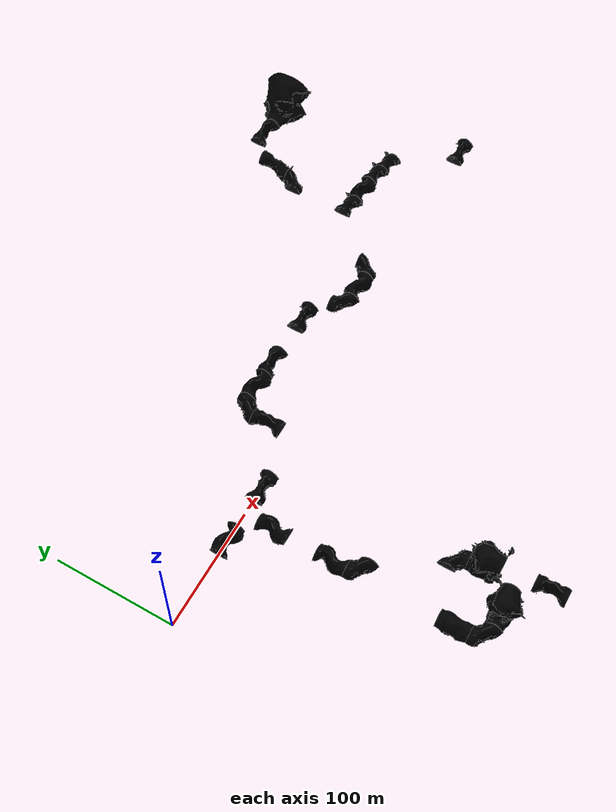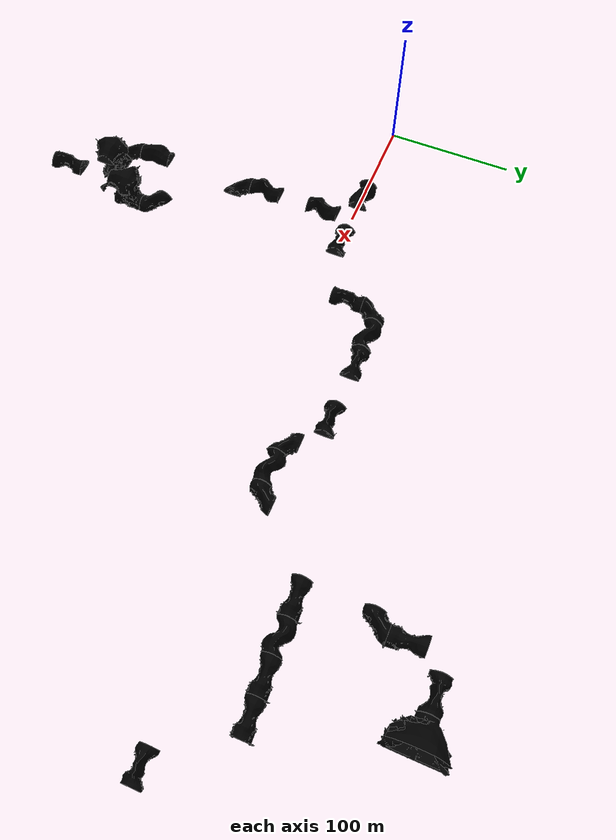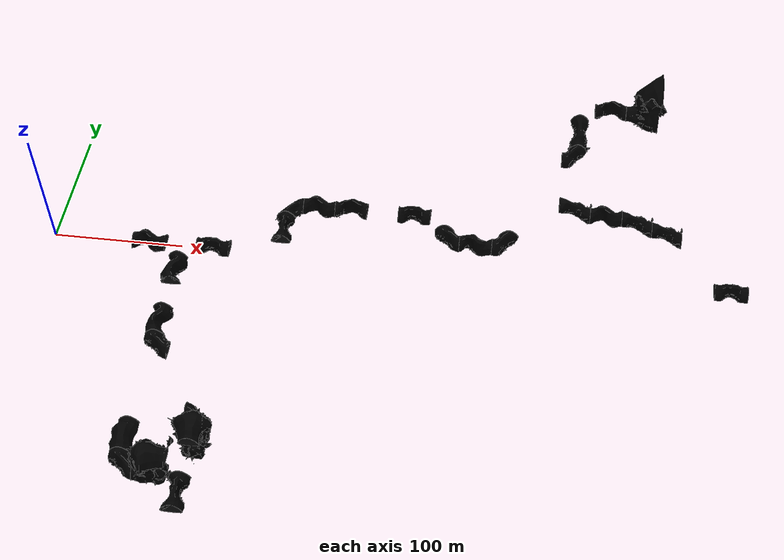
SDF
<sdf version="1.6">
 <world name="simple_cave_01">
  <plugin filename="libignition-gazebo-physics-system.so" name="ignition::gazebo::systems::Physics"/>
  <plugin filename="libignition-gazebo-user-commands-system.so" name="ignition::gazebo::systems::UserCommands"/>
  <plugin filename="libignition-gazebo-scene-broadcaster-system.so" name="ignition::gazebo::systems::SceneBroadcaster"/>
  <physics name="1ms" type="ode">
   <max_step_size>0.004</max_step_size>
   <real_time_factor>1.0</real_time_factor>
  </physics>
  <scene>
   <ambient>0.1 0.1 0.1 1.0</ambient>
   <background>0 0 0 1.0</background>
   <grid>false</grid>
   <origin_visual>false</origin_visual>
  </scene>
  <atmosphere type="adiabatic">
   <temperature>288</temperature>
   <temperature_gradient>0.2</temperature_gradient>
  </atmosphere>
  <include>
   <name>tile_2</name>
   <uri>https://fuel.ignitionrobotics.org/1.0/OpenRobotics/models/Cave Straight 02 Type B</uri>
   <pose>425.000000 175.000000 10.000000 0 0 1.570796</pose>
  </include>
  <include>
   <name>tile_3</name>
   <uri>https://fuel.ignitionrobotics.org/1.0/OpenRobotics/models/Cave Cavern Split 02 Type B</uri>
   <pose>450.000000 175.000000 10.000000 0 0 0.000000</pose>
  </include>
  <include>
   <name>tile_5</name>
   <uri>https://fuel.ignitionrobotics.org/1.0/OpenRobotics/models/Cave Elevation Type B</uri>
   <pose>400.000000 150.000000 0.000000 0 0 3.141593</pose>
  </include>
  <include>
   <name>tile_7</name>
   <uri>https://fuel.ignitionrobotics.org/1.0/OpenRobotics/models/Cave Corner 02 Type B</uri>
   <pose>400.000000 125.000000 0.000000 0 0 0.000000</pose>
  </include>
  <include>
   <name>tile_11</name>
   <uri>https://fuel.ignitionrobotics.org/1.0/OpenRobotics/models/Cave Elevation Type B</uri>
   <pose>400.000000 75.000000 -10.000000 0 0 -1.570796</pose>
  </include>
  <include>
   <name>tile_12</name>
   <uri>https://fuel.ignitionrobotics.org/1.0/OpenRobotics/models/Cave Straight 03 Type B</uri>
   <pose>425.000000 75.000000 -10.000000 0 0 1.570796</pose>
  </include>
  <include>
   <name>tile_13</name>
   <uri>https://fuel.ignitionrobotics.org/1.0/OpenRobotics/models/Cave Elevation Type B</uri>
   <pose>450.000000 75.000000 -20.000000 0 0 -1.570796</pose>
  </include>
  <include>
   <name>tile_14</name>
   <uri>https://fuel.ignitionrobotics.org/1.0/OpenRobotics/models/Cave Elevation Type B</uri>
   <pose>475.000000 75.000000 -30.000000 0 0 -1.570796</pose>
  </include>
  <include>
   <name>tile_16</name>
   <uri>https://fuel.ignitionrobotics.org/1.0/OpenRobotics/models/Cave Corner 02 Type B</uri>
   <pose>175.000000 50.000000 0.000000 0 0 3.141593</pose>
  </include>
  <include>
   <name>tile_17</name>
   <uri>https://fuel.ignitionrobotics.org/1.0/OpenRobotics/models/Cave Straight 03 Type B</uri>
   <pose>200.000000 50.000000 0.000000 0 0 1.570796</pose>
  </include>
  <include>
   <name>tile_18</name>
   <uri>https://fuel.ignitionrobotics.org/1.0/OpenRobotics/models/Cave Straight 02 Type B</uri>
   <pose>225.000000 50.000000 0.000000 0 0 1.570796</pose>
  </include>
  <include>
   <name>tile_20</name>
   <uri>https://fuel.ignitionrobotics.org/1.0/OpenRobotics/models/Cave Straight 02 Type B</uri>
   <pose>275.000000 50.000000 0.000000 0 0 -1.570796</pose>
  </include>
  <include>
   <name>tile_24</name>
   <uri>https://fuel.ignitionrobotics.org/1.0/OpenRobotics/models/Cave Straight 02 Type B</uri>
   <pose>175.000000 25.000000 0.000000 0 0 0.000000</pose>
  </include>
  <include>
   <name>tile_25</name>
   <uri>https://fuel.ignitionrobotics.org/1.0/OpenRobotics/models/Cave Corner 02 Type B</uri>
   <pose>300.000000 25.000000 0.000000 0 0 -1.570796</pose>
  </include>
  <include>
   <name>tile_26</name>
   <uri>https://fuel.ignitionrobotics.org/1.0/OpenRobotics/models/Cave Straight 03 Type B</uri>
   <pose>325.000000 25.000000 0.000000 0 0 -1.570796</pose>
  </include>
  <include>
   <name>tile_27</name>
   <uri>https://fuel.ignitionrobotics.org/1.0/OpenRobotics/models/Cave Corner 02 Type B</uri>
   <pose>350.000000 25.000000 0.000000 0 0 0.000000</pose>
  </include>
  <include>
   <name>tile_29</name>
   <uri>https://fuel.ignitionrobotics.org/1.0/OpenRobotics/models/Cave Straight 02 Type B</uri>
   <pose>525.000000 25.000000 -30.000000 0 0 -1.570796</pose>
  </include>
  <include>
   <name>tile_32</name>
   <uri>https://fuel.ignitionrobotics.org/1.0/OpenRobotics/models/Cave Straight 03 Type B</uri>
   <pose>75.000000 0.000000 0.000000 0 0 1.570796</pose>
  </include>
  <include>
   <name>tile_34</name>
   <uri>https://fuel.ignitionrobotics.org/1.0/OpenRobotics/models/Cave Straight 02 Type B</uri>
   <pose>125.000000 0.000000 0.000000 0 0 -1.570796</pose>
  </include>
  <include>
   <name>tile_37</name>
   <uri>https://fuel.ignitionrobotics.org/1.0/OpenRobotics/models/Cave Straight 03 Type B</uri>
   <pose>100.000000 -25.000000 0.000000 0 0 0.000000</pose>
  </include>
  <include>
   <name>tile_39</name>
   <uri>https://fuel.ignitionrobotics.org/1.0/OpenRobotics/models/Cave Straight 03 Type B</uri>
   <pose>100.000000 -75.000000 0.000000 0 0 3.141593</pose>
  </include>
  <include>
   <name>tile_40</name>
   <uri>https://fuel.ignitionrobotics.org/1.0/OpenRobotics/models/Cave Corner 02 Type B</uri>
   <pose>100.000000 -100.000000 0.000000 0 0 -1.570796</pose>
  </include>
  <include>
   <name>tile_45</name>
   <uri>https://fuel.ignitionrobotics.org/1.0/OpenRobotics/models/Cave Corner 02 Type B</uri>
   <pose>150.000000 -150.000000 0.000000 0 0 1.570796</pose>
  </include>
  <include>
   <name>tile_46</name>
   <uri>https://fuel.ignitionrobotics.org/1.0/OpenRobotics/models/Cave Straight 04 Type B</uri>
   <pose>100.000000 -175.000000 0.000000 0 0 0.000000</pose>
  </include>
  <include>
   <name>tile_47</name>
   <uri>https://fuel.ignitionrobotics.org/1.0/OpenRobotics/models/Cave Vertical Shaft Type B</uri>
   <pose>150.000000 -175.000000 0.000000 0 0 3.141593</pose>
  </include>
  <include>
   <name>tile_48</name>
   <uri>https://fuel.ignitionrobotics.org/1.0/OpenRobotics/models/Cave Corner 02 Type B</uri>
   <pose>100.000000 -200.000000 0.000000 0 0 -1.570796</pose>
  </include>
  <include>
   <name>tile_49</name>
   <uri>https://fuel.ignitionrobotics.org/1.0/OpenRobotics/models/Cave Vertical Shaft Type B</uri>
   <pose>125.000000 -200.000000 0.000000 0 0 -1.570796</pose>
  </include>
  <include>
   <name>tile_51</name>
   <uri>https://fuel.ignitionrobotics.org/1.0/OpenRobotics/models/Cave Straight 02 Type B</uri>
   <pose>150.000000 -225.000000 20.000000 0 0 0.000000</pose>
  </include>
  <wind><linear_velocity>0.000000 0.000000 0.000000</linear_velocity></wind>
  <plugin name="ignition::gazebo::systems::WindEffects" filename="libignition-gazebo-wind-effects-system.so">
   <horizontal>
    <magnitude>
     <time_for_rise>10</time_for_rise>
     <sin><amplitude_percent>0.05</amplitude_percent><period>60</period></sin>
     <noise type="gaussian"><mean>0</mean><stddev>0.0002</stddev></noise>
    </magnitude>
    <direction>
     <time_for_rise>30</time_for_rise>
     <sin><amplitude>5</amplitude><period>20</period></sin>
     <noise type="gaussian"><mean>0</mean><stddev>0.03</stddev></noise>
    </direction>
   </horizontal>
   <vertical><noise type="gaussian"><mean>0</mean><stddev>0.03</stddev></noise></vertical>
  </plugin>
  <plugin name="ignition::gazebo" filename="dummy">
   <level name="level0">
    <ref>tile_1</ref>
    <ref>tile_2</ref>
    <ref>tile_3</ref>
    <ref>tile_4</ref>
    <ref>cave_cap_2</ref>
    <pose>287.500000 175.000000 0.000000 0 0 0</pose>
    <geometry><box><size>575.000000 46.875000 130.000000</size></box></geometry>
    <buffer>5.000000</buffer>
   </level>
   <level name="level4">
    <ref>rescue_randy_1</ref>
    <pose>287.500000 183.140000 0.000000 0 0 0</pose>
    <geometry><box><size>575.000000 46.875000 130.000000</size></box></geometry>
    <buffer>5.000000</buffer>
   </level>
   <level name="level7">
    <ref>cave_cap_1</ref>
    <pose>287.500000 212.500000 0.000000 0 0 0</pose>
    <geometry><box><size>575.000000 46.875000 130.000000</size></box></geometry>
    <buffer>5.000000</buffer>
   </level>
   <level name="level9">
    <ref>tile_5</ref>
    <pose>287.500000 150.000000 0.000000 0 0 0</pose>
    <geometry><box><size>575.000000 46.875000 130.000000</size></box></geometry>
    <buffer>5.000000</buffer>
   </level>
   <level name="level10">
    <ref>tile_6</ref>
    <ref>tile_7</ref>
    <pose>287.500000 125.000000 0.000000 0 0 0</pose>
    <geometry><box><size>575.000000 46.875000 130.000000</size></box></geometry>
    <buffer>5.000000</buffer>
   </level>
   <level name="level12">
    <ref>tile_8</ref>
    <pose>287.500000 100.000000 0.000000 0 0 0</pose>
    <geometry><box><size>575.000000 46.875000 130.000000</size></box></geometry>
    <buffer>5.000000</buffer>
   </level>
   <level name="level13">
    <ref>tile_9</ref>
    <ref>tile_10</ref>
    <ref>tile_11</ref>
    <ref>tile_12</ref>
    <ref>tile_13</ref>
    <ref>tile_14</ref>
    <ref>tile_15</ref>
    <pose>287.500000 75.000000 0.000000 0 0 0</pose>
    <geometry><box><size>575.000000 46.875000 130.000000</size></box></geometry>
    <buffer>5.000000</buffer>
   </level>
   <level name="level15">
    <ref>rescue_randy_2</ref>
    <pose>287.500000 78.140000 0.000000 0 0 0</pose>
    <geometry><box><size>575.000000 46.875000 130.000000</size></box></geometry>
    <buffer>5.000000</buffer>
   </level>
   <level name="level17">
    <ref>phone_1</ref>
    <pose>287.500000 76.720000 0.000000 0 0 0</pose>
    <geometry><box><size>575.000000 46.875000 130.000000</size></box></geometry>
    <buffer>5.000000</buffer>
   </level>
   <level name="level18">
    <ref>tile_16</ref>
    <ref>tile_17</ref>
    <ref>tile_18</ref>
    <ref>tile_19</ref>
    <ref>tile_20</ref>
    <ref>tile_21</ref>
    <ref>tile_22</ref>
    <ref>tile_23</ref>
    <pose>287.500000 50.000000 0.000000 0 0 0</pose>
    <geometry><box><size>575.000000 46.875000 130.000000</size></box></geometry>
    <buffer>5.000000</buffer>
   </level>
   <level name="level22">
    <ref>backpack_1</ref>
    <pose>287.500000 48.750000 0.000000 0 0 0</pose>
    <geometry><box><size>575.000000 46.875000 130.000000</size></box></geometry>
    <buffer>5.000000</buffer>
   </level>
   <level name="level27">
    <ref>phone_2</ref>
    <pose>287.500000 50.640000 0.000000 0 0 0</pose>
    <geometry><box><size>575.000000 46.875000 130.000000</size></box></geometry>
    <buffer>5.000000</buffer>
   </level>
   <level name="level28">
    <ref>tile_24</ref>
    <ref>tile_25</ref>
    <ref>tile_26</ref>
    <ref>tile_27</ref>
    <ref>tile_28</ref>
    <ref>tile_29</ref>
    <ref>cave_cap_3</ref>
    <pose>287.500000 25.000000 0.000000 0 0 0</pose>
    <geometry><box><size>575.000000 46.875000 130.000000</size></box></geometry>
    <buffer>5.000000</buffer>
   </level>
   <level name="level29">
    <ref>backpack_2</ref>
    <pose>287.500000 32.580000 0.000000 0 0 0</pose>
    <geometry><box><size>575.000000 46.875000 130.000000</size></box></geometry>
    <buffer>5.000000</buffer>
   </level>
   <level name="level32">
    <ref>rescue_randy_3</ref>
    <pose>287.500000 25.050000 0.000000 0 0 0</pose>
    <geometry><box><size>575.000000 46.875000 130.000000</size></box></geometry>
    <buffer>5.000000</buffer>
   </level>
   <level name="level35">
    <ref>tile_30</ref>
    <ref>tile_31</ref>
    <ref>tile_32</ref>
    <ref>tile_33</ref>
    <ref>tile_34</ref>
    <ref>tile_35</ref>
    <ref>tile_36</ref>
    <pose>287.500000 0.000000 0.000000 0 0 0</pose>
    <geometry><box><size>575.000000 46.875000 130.000000</size></box></geometry>
    <buffer>5.000000</buffer>
   </level>
   <level name="level39">
    <ref>backpack_3</ref>
    <pose>287.500000 -5.000000 0.000000 0 0 0</pose>
    <geometry><box><size>575.000000 46.875000 130.000000</size></box></geometry>
    <buffer>5.000000</buffer>
   </level>
   <level name="level44">
    <ref>phone_3</ref>
    <pose>287.500000 -2.030000 0.000000 0 0 0</pose>
    <geometry><box><size>575.000000 46.875000 130.000000</size></box></geometry>
    <buffer>5.000000</buffer>
   </level>
   <level name="level46">
    <ref>tile_37</ref>
    <pose>287.500000 -25.000000 0.000000 0 0 0</pose>
    <geometry><box><size>575.000000 46.875000 130.000000</size></box></geometry>
    <buffer>5.000000</buffer>
   </level>
   <level name="level47">
    <ref>tile_38</ref>
    <pose>287.500000 -50.000000 0.000000 0 0 0</pose>
    <geometry><box><size>575.000000 46.875000 130.000000</size></box></geometry>
    <buffer>5.000000</buffer>
   </level>
   <level name="level48">
    <ref>tile_39</ref>
    <pose>287.500000 -75.000000 0.000000 0 0 0</pose>
    <geometry><box><size>575.000000 46.875000 130.000000</size></box></geometry>
    <buffer>5.000000</buffer>
   </level>
   <level name="level49">
    <ref>tile_40</ref>
    <ref>tile_41</ref>
    <pose>287.500000 -100.000000 0.000000 0 0 0</pose>
    <geometry><box><size>575.000000 46.875000 130.000000</size></box></geometry>
    <buffer>5.000000</buffer>
   </level>
   <level name="level50">
    <ref>tile_42</ref>
    <pose>287.500000 -125.000000 0.000000 0 0 0</pose>
    <geometry><box><size>575.000000 46.875000 130.000000</size></box></geometry>
    <buffer>5.000000</buffer>
   </level>
   <level name="level51">
    <ref>phone_4</ref>
    <pose>287.500000 -121.680000 0.000000 0 0 0</pose>
    <geometry><box><size>575.000000 46.875000 130.000000</size></box></geometry>
    <buffer>5.000000</buffer>
   </level>
   <level name="level52">
    <ref>tile_43</ref>
    <ref>tile_44</ref>
    <ref>tile_45</ref>
    <pose>287.500000 -150.000000 0.000000 0 0 0</pose>
    <geometry><box><size>575.000000 46.875000 130.000000</size></box></geometry>
    <buffer>5.000000</buffer>
   </level>
   <level name="level53">
    <ref>tile_46</ref>
    <ref>tile_47</ref>
    <pose>287.500000 -175.000000 0.000000 0 0 0</pose>
    <geometry><box><size>575.000000 46.875000 130.000000</size></box></geometry>
    <buffer>5.000000</buffer>
   </level>
   <level name="level54">
    <ref>tile_48</ref>
    <ref>tile_49</ref>
    <ref>backpack_4</ref>
    <ref>tile_50</ref>
    <pose>287.500000 -200.000000 0.000000 0 0 0</pose>
    <geometry><box><size>575.000000 46.875000 130.000000</size></box></geometry>
    <buffer>5.000000</buffer>
   </level>
   <level name="level56">
    <ref>tile_51</ref>
    <pose>287.500000 -225.000000 0.000000 0 0 0</pose>
    <geometry><box><size>575.000000 46.875000 130.000000</size></box></geometry>
    <buffer>5.000000</buffer>
   </level>
   <level name="level57">
    <ref>rescue_randy_4</ref>
    <pose>287.500000 -237.280000 0.000000 0 0 0</pose>
    <geometry><box><size>575.000000 46.875000 130.000000</size></box></geometry>
    <buffer>5.000000</buffer>
   </level>
   <level name="level58">
    <ref>cave_cap_4</ref>
    <pose>287.500000 -250.000000 0.000000 0 0 0</pose>
    <geometry><box><size>575.000000 46.875000 130.000000</size></box></geometry>
    <buffer>5.000000</buffer>
   </level>
   <level name="level1">
    <ref>tile_1</ref>
    <ref>tile_5</ref>
    <ref>tile_7</ref>
    <ref>tile_11</ref>
    <pose>400.000000 -18.750000 0.000000 0 0 0</pose>
    <geometry><box><size>46.875000 512.500000 130.000000</size></box></geometry>
    <buffer>5.000000</buffer>
   </level>
   <level name="level2">
    <ref>tile_2</ref>
    <ref>tile_12</ref>
    <ref>phone_1</ref>
    <pose>425.000000 -18.750000 0.000000 0 0 0</pose>
    <geometry><box><size>46.875000 512.500000 130.000000</size></box></geometry>
    <buffer>5.000000</buffer>
   </level>
   <level name="level3">
    <ref>tile_3</ref>
    <ref>tile_13</ref>
    <pose>450.000000 -18.750000 0.000000 0 0 0</pose>
    <geometry><box><size>46.875000 512.500000 130.000000</size></box></geometry>
    <buffer>5.000000</buffer>
   </level>
   <level name="level5">
    <ref>rescue_randy_1</ref>
    <pose>453.290000 -18.750000 0.000000 0 0 0</pose>
    <geometry><box><size>46.875000 512.500000 130.000000</size></box></geometry>
    <buffer>5.000000</buffer>
   </level>
   <level name="level6">
    <ref>tile_4</ref>
    <ref>cave_cap_1</ref>
    <ref>tile_14</ref>
    <pose>475.000000 -18.750000 0.000000 0 0 0</pose>
    <geometry><box><size>46.875000 512.500000 130.000000</size></box></geometry>
    <buffer>5.000000</buffer>
   </level>
   <level name="level8">
    <ref>cave_cap_2</ref>
    <ref>tile_15</ref>
    <ref>tile_23</ref>
    <ref>phone_2</ref>
    <ref>tile_28</ref>
    <pose>500.000000 -18.750000 0.000000 0 0 0</pose>
    <geometry><box><size>46.875000 512.500000 130.000000</size></box></geometry>
    <buffer>5.000000</buffer>
   </level>
   <level name="level11">
    <ref>tile_6</ref>
    <ref>tile_8</ref>
    <ref>tile_10</ref>
    <pose>375.000000 -18.750000 0.000000 0 0 0</pose>
    <geometry><box><size>46.875000 512.500000 130.000000</size></box></geometry>
    <buffer>5.000000</buffer>
   </level>
   <level name="level14">
    <ref>tile_9</ref>
    <ref>tile_22</ref>
    <ref>tile_27</ref>
    <pose>350.000000 -18.750000 0.000000 0 0 0</pose>
    <geometry><box><size>46.875000 512.500000 130.000000</size></box></geometry>
    <buffer>5.000000</buffer>
   </level>
   <level name="level16">
    <ref>rescue_randy_2</ref>
    <pose>348.000000 -18.750000 0.000000 0 0 0</pose>
    <geometry><box><size>46.875000 512.500000 130.000000</size></box></geometry>
    <buffer>5.000000</buffer>
   </level>
   <level name="level19">
    <ref>tile_16</ref>
    <ref>tile_24</ref>
    <ref>tile_36</ref>
    <pose>175.000000 -18.750000 0.000000 0 0 0</pose>
    <geometry><box><size>46.875000 512.500000 130.000000</size></box></geometry>
    <buffer>5.000000</buffer>
   </level>
   <level name="level20">
    <ref>tile_17</ref>
    <pose>200.000000 -18.750000 0.000000 0 0 0</pose>
    <geometry><box><size>46.875000 512.500000 130.000000</size></box></geometry>
    <buffer>5.000000</buffer>
   </level>
   <level name="level21">
    <ref>tile_18</ref>
    <pose>225.000000 -18.750000 0.000000 0 0 0</pose>
    <geometry><box><size>46.875000 512.500000 130.000000</size></box></geometry>
    <buffer>5.000000</buffer>
   </level>
   <level name="level23">
    <ref>backpack_1</ref>
    <pose>233.830000 -18.750000 0.000000 0 0 0</pose>
    <geometry><box><size>46.875000 512.500000 130.000000</size></box></geometry>
    <buffer>5.000000</buffer>
   </level>
   <level name="level24">
    <ref>tile_19</ref>
    <pose>250.000000 -18.750000 0.000000 0 0 0</pose>
    <geometry><box><size>46.875000 512.500000 130.000000</size></box></geometry>
    <buffer>5.000000</buffer>
   </level>
   <level name="level25">
    <ref>tile_20</ref>
    <pose>275.000000 -18.750000 0.000000 0 0 0</pose>
    <geometry><box><size>46.875000 512.500000 130.000000</size></box></geometry>
    <buffer>5.000000</buffer>
   </level>
   <level name="level26">
    <ref>tile_21</ref>
    <ref>tile_25</ref>
    <ref>backpack_2</ref>
    <pose>300.000000 -18.750000 0.000000 0 0 0</pose>
    <geometry><box><size>46.875000 512.500000 130.000000</size></box></geometry>
    <buffer>5.000000</buffer>
   </level>
   <level name="level30">
    <ref>tile_26</ref>
    <pose>325.000000 -18.750000 0.000000 0 0 0</pose>
    <geometry><box><size>46.875000 512.500000 130.000000</size></box></geometry>
    <buffer>5.000000</buffer>
   </level>
   <level name="level31">
    <ref>tile_29</ref>
    <pose>525.000000 -18.750000 0.000000 0 0 0</pose>
    <geometry><box><size>46.875000 512.500000 130.000000</size></box></geometry>
    <buffer>5.000000</buffer>
   </level>
   <level name="level33">
    <ref>rescue_randy_3</ref>
    <pose>536.600000 -18.750000 0.000000 0 0 0</pose>
    <geometry><box><size>46.875000 512.500000 130.000000</size></box></geometry>
    <buffer>5.000000</buffer>
   </level>
   <level name="level34">
    <ref>cave_cap_3</ref>
    <pose>550.000000 -18.750000 0.000000 0 0 0</pose>
    <geometry><box><size>46.875000 512.500000 130.000000</size></box></geometry>
    <buffer>5.000000</buffer>
   </level>
   <level name="level36">
    <ref>tile_30</ref>
    <pose>25.000000 -18.750000 0.000000 0 0 0</pose>
    <geometry><box><size>46.875000 512.500000 130.000000</size></box></geometry>
    <buffer>5.000000</buffer>
   </level>
   <level name="level37">
    <ref>tile_31</ref>
    <pose>50.000000 -18.750000 0.000000 0 0 0</pose>
    <geometry><box><size>46.875000 512.500000 130.000000</size></box></geometry>
    <buffer>5.000000</buffer>
   </level>
   <level name="level38">
    <ref>tile_32</ref>
    <pose>75.000000 -18.750000 0.000000 0 0 0</pose>
    <geometry><box><size>46.875000 512.500000 130.000000</size></box></geometry>
    <buffer>5.000000</buffer>
   </level>
   <level name="level40">
    <ref>backpack_3</ref>
    <pose>80.160000 -18.750000 0.000000 0 0 0</pose>
    <geometry><box><size>46.875000 512.500000 130.000000</size></box></geometry>
    <buffer>5.000000</buffer>
   </level>
   <level name="level41">
    <ref>tile_33</ref>
    <ref>tile_37</ref>
    <ref>tile_38</ref>
    <ref>tile_39</ref>
    <ref>tile_40</ref>
    <ref>tile_43</ref>
    <ref>tile_46</ref>
    <ref>tile_48</ref>
    <pose>100.000000 -18.750000 0.000000 0 0 0</pose>
    <geometry><box><size>46.875000 512.500000 130.000000</size></box></geometry>
    <buffer>5.000000</buffer>
   </level>
   <level name="level42">
    <ref>tile_34</ref>
    <ref>tile_41</ref>
    <ref>tile_42</ref>
    <ref>phone_4</ref>
    <ref>tile_44</ref>
    <ref>tile_49</ref>
    <pose>125.000000 -18.750000 0.000000 0 0 0</pose>
    <geometry><box><size>46.875000 512.500000 130.000000</size></box></geometry>
    <buffer>5.000000</buffer>
   </level>
   <level name="level43">
    <ref>tile_35</ref>
    <ref>tile_45</ref>
    <ref>tile_47</ref>
    <ref>tile_50</ref>
    <ref>tile_51</ref>
    <ref>rescue_randy_4</ref>
    <ref>cave_cap_4</ref>
    <pose>150.000000 -18.750000 0.000000 0 0 0</pose>
    <geometry><box><size>46.875000 512.500000 130.000000</size></box></geometry>
    <buffer>5.000000</buffer>
   </level>
   <level name="level45">
    <ref>phone_3</ref>
    <pose>149.960000 -18.750000 0.000000 0 0 0</pose>
    <geometry><box><size>46.875000 512.500000 130.000000</size></box></geometry>
    <buffer>5.000000</buffer>
   </level>
   <level name="level55">
    <ref>backpack_4</ref>
    <pose>130.110000 -18.750000 0.000000 0 0 0</pose>
    <geometry><box><size>46.875000 512.500000 130.000000</size></box></geometry>
    <buffer>5.000000</buffer>
   </level>
  </plugin>
 </world>
</sdf>

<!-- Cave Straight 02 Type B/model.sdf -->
<sdf version="1.6">
  <model name="Cave Straight 02 Type B">
    <static>true</static>
    <link name="base_link">
      <collision name="collision">
        <pose>0 0 0 0 0 0</pose>
        <geometry>
          <mesh>
            <uri>model://Cave Straight 02 Type B/meshes/cavestraight02.dae</uri>
            <scale>1.005 1.005 1.0</scale>
          </mesh>
        </geometry>
      </collision>
      <visual name="StriatedRock_visual">
        <geometry>
          <mesh>
            <uri>model://Cave Straight 02 Type B/meshes/cavestraight02.dae</uri>
            <scale>1.005 1.005 1.0</scale>
            <submesh>
              <name>StriatedRock</name>
              <center>false</center>
            </submesh>
          </mesh>
        </geometry>
        <material>
          <diffuse>0 0 0 1</diffuse>
          <specular>0 0 0 1</specular>
          <pbr>
            <metal>
              <albedo_map>model://Cave Straight 02 Type B/materials/textures/StriatedRock_Albedo.png</albedo_map>
              <normal_map>model://Cave Straight 02 Type B/materials/textures/StriatedRock_Normal.png</normal_map>
              <roughness_map>model://Cave Straight 02 Type B/materials/textures/StriatedRock_Roughness.png</roughness_map>
            </metal>
          </pbr>

          <script>
            <uri>model://Cave Straight 02 Type B/materials/scripts/</uri>
            <uri>model://Cave Straight 02 Type B/materials/textures/</uri>
            <name>CaveTile/StriatedRock_Diffuse</name>
          </script>
        </material>
      </visual>
      <visual name="RockPile_visual">
        <geometry>
          <mesh>
            <uri>model://Cave Straight 02 Type B/meshes/cavestraight02.dae</uri>
            <scale>1.005 1.005 1.0</scale>
            <submesh>
              <name>RockPile</name>
              <center>false</center>
            </submesh>
          </mesh>
        </geometry>
        <material>
          <diffuse>0 0 0 1</diffuse>
          <specular>0 0 0 1</specular>
          <pbr>
            <metal>
              <albedo_map>model://Cave Straight 02 Type B/materials/textures/RockPile_Albedo.png</albedo_map>
              <normal_map>model://Cave Straight 02 Type B/materials/textures/RockPile_Normal.png</normal_map>
              <roughness_map>model://Cave Straight 02 Type B/materials/textures/RockPile_Roughness.png</roughness_map>
            </metal>
          </pbr>

          <script>
            <uri>model://Cave Straight 02 Type B/materials/scripts/</uri>
            <uri>model://Cave Straight 02 Type B/materials/textures/</uri>
            <name>CaveTile/RockPile_Diffuse</name>
          </script>
        </material>
      </visual>
      <visual name="CaveWall_visual">
        <geometry>
          <mesh>
            <uri>model://Cave Straight 02 Type B/meshes/cavestraight02.dae</uri>
            <scale>1.005 1.005 1.0</scale>
            <submesh>
              <name>CaveWall</name>
              <center>false</center>
            </submesh>
          </mesh>
        </geometry>
        <material>
          <diffuse>0 0 0 1</diffuse>
          <specular>0 0 0 1</specular>
          <pbr>
            <metal>
              <albedo_map>model://Cave Straight 02 Type B/materials/textures/CaveWall_Albedo.png</albedo_map>
              <normal_map>model://Cave Straight 02 Type B/materials/textures/CaveWall_Normal.png</normal_map>
              <roughness_map>model://Cave Straight 02 Type B/materials/textures/CaveWall_Roughness.png</roughness_map>
            </metal>
          </pbr>

          <script>
            <uri>model://Cave Straight 02 Type B/materials/scripts/</uri>
            <uri>model://Cave Straight 02 Type B/materials/textures/</uri>
            <name>CaveTile/CaveWall_Diffuse</name>
          </script>
        </material>
      </visual>
    </link>
  </model>
</sdf>

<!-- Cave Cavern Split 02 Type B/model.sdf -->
<sdf version="1.6">
  <model name="Cave Cavern Split 02 Type B">
    <static>true</static>
    <link name="base_link">
      <collision name="collision">
        <pose>0 0 0 0 0 0</pose>
        <geometry>
          <mesh>
            <uri>model://cave_Cave Cavern Split 02 Type B/meshes/cavernsplit02.dae</uri>
            <scale>1.0 1.0 1.0</scale>
          </mesh>
        </geometry>
      </collision>
      <visual name="StriatedRock_visual">
        <geometry>
          <mesh>
            <uri>model://cave_Cave Cavern Split 02 Type B/meshes/cavernsplit02.dae</uri>
            <submesh>
              <name>StriatedRock</name>
              <center>false</center>
            </submesh>
          </mesh>
        </geometry>
        <material>
          <diffuse>0 0 0 1</diffuse>
          <specular>0 0 0 1</specular>
          <pbr>
            <metal>
              <albedo_map>model://cave_Cave Cavern Split 02 Type B/materials/textures/StriatedRock_Albedo.png</albedo_map>
              <normal_map>model://cave_Cave Cavern Split 02 Type B/materials/textures/StriatedRock_Normal.png</normal_map>
              <roughness_map>model://cave_Cave Cavern Split 02 Type B/materials/textures/StriatedRock_Roughness.png</roughness_map>
            </metal>
          </pbr>

          <script>
            <uri>model://cave_Cave Cavern Split 02 Type B/materials/scripts/</uri>
            <uri>model://cave_Cave Cavern Split 02 Type B/materials/textures/</uri>
            <name>CaveTile/StriatedRock_Diffuse</name>
          </script>
        </material>
      </visual>
      <visual name="RockPile_visual">
        <geometry>
          <mesh>
            <uri>model://cave_Cave Cavern Split 02 Type B/meshes/cavernsplit02.dae</uri>
            <submesh>
              <name>RockPile</name>
              <center>false</center>
            </submesh>
          </mesh>
        </geometry>
        <material>
          <diffuse>0 0 0 1</diffuse>
          <specular>0 0 0 1</specular>
          <pbr>
            <metal>
              <albedo_map>model://cave_Cave Cavern Split 02 Type B/materials/textures/RockPile_Albedo.png</albedo_map>
              <normal_map>model://cave_Cave Cavern Split 02 Type B/materials/textures/RockPile_Normal.png</normal_map>
              <roughness_map>model://cave_Cave Cavern Split 02 Type B/materials/textures/RockPile_Roughness.png</roughness_map>
            </metal>
          </pbr>

          <script>
            <uri>model://cave_Cave Cavern Split 02 Type B/materials/scripts/</uri>
            <uri>model://cave_Cave Cavern Split 02 Type B/materials/textures/</uri>
            <name>CaveTile/RockPile_Diffuse</name>
          </script>
        </material>
      </visual>
      <visual name="CaveWall_visual">
        <geometry>
          <mesh>
            <uri>model://cave_Cave Cavern Split 02 Type B/meshes/cavernsplit02.dae</uri>
            <submesh>
              <name>CaveWall_ncl1_1</name>
              <center>false</center>
            </submesh>
          </mesh>
        </geometry>
        <material>
          <diffuse>0 0 0 1</diffuse>
          <specular>0 0 0 1</specular>
          <pbr>
            <metal>
              <albedo_map>model://cave_Cave Cavern Split 02 Type B/materials/textures/CaveWall_Albedo.png</albedo_map>
              <normal_map>model://cave_Cave Cavern Split 02 Type B/materials/textures/CaveWall_Normal.png</normal_map>
              <roughness_map>model://cave_Cave Cavern Split 02 Type B/materials/textures/CaveWall_Roughness.png</roughness_map>
            </metal>
          </pbr>

          <script>
            <uri>model://cave_Cave Cavern Split 02 Type B/materials/scripts/</uri>
            <uri>model://cave_Cave Cavern Split 02 Type B/materials/textures/</uri>
            <name>CaveTile/CaveWall_Diffuse</name>
          </script>
        </material>
      </visual>
    </link>
  </model>
</sdf>

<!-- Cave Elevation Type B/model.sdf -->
<sdf version="1.6">
  <model name="Cave Elevation Type B">
    <static>true</static>
    <link name="base_link">
      <collision name="collision">
        <pose>0 0 0 0 0 0</pose>
        <geometry>
          <mesh>
            <uri>model://Cave Elevation Type B/meshes/caveelevation.dae</uri>
            <scale>1.0 1.0 1.0</scale>
          </mesh>
        </geometry>
      </collision>
      <visual name="CaveWall_visual">
        <geometry>
          <mesh>
            <uri>model://Cave Elevation Type B/meshes/caveelevation.dae</uri>
            <submesh>
              <name>CaveWall</name>
              <center>false</center>
            </submesh>
          </mesh>
        </geometry>
        <material>
          <diffuse>0 0 0 1</diffuse>
          <specular>0 0 0 1</specular>
          <pbr>
            <metal>
              <albedo_map>model://Cave Elevation Type B/materials/textures/CaveWall_Albedo.png</albedo_map>
              <normal_map>model://Cave Elevation Type B/materials/textures/CaveWall_Normal.png</normal_map>
              <roughness_map>model://Cave Elevation Type B/materials/textures/CaveWall_Roughness.png</roughness_map>
            </metal>
          </pbr>

          <script>
            <uri>model://Cave Elevation Type B/materials/scripts/</uri>
            <uri>model://Cave Elevation Type B/materials/textures/</uri>
            <name>CaveTile/CaveWall_Diffuse</name>
          </script>
        </material>
      </visual>
      <visual name="RockPile_visual">
        <geometry>
          <mesh>
            <uri>model://Cave Elevation Type B/meshes/caveelevation.dae</uri>
            <submesh>
              <name>RockPile</name>
              <center>false</center>
            </submesh>
          </mesh>
        </geometry>
        <material>
          <diffuse>0 0 0 1</diffuse>
          <specular>0 0 0 1</specular>
          <pbr>
            <metal>
              <albedo_map>model://Cave Elevation Type B/materials/textures/RockPile_Albedo.png</albedo_map>
              <normal_map>model://Cave Elevation Type B/materials/textures/RockPile_Normal.png</normal_map>
              <roughness_map>model://Cave Elevation Type B/materials/textures/RockPile_Roughness.png</roughness_map>
            </metal>
          </pbr>

          <script>
            <uri>model://Cave Elevation Type B/materials/scripts/</uri>
            <uri>model://Cave Elevation Type B/materials/textures/</uri>
            <name>CaveTile/RockPile_Diffuse</name>
          </script>
        </material>
      </visual>
      <visual name="StriatedRock_visual">
        <geometry>
          <mesh>
            <uri>model://Cave Elevation Type B/meshes/caveelevation.dae</uri>
            <submesh>
              <name>StriatedRock</name>
              <center>false</center>
            </submesh>
          </mesh>
        </geometry>
        <material>
          <diffuse>0 0 0 1</diffuse>
          <specular>0 0 0 1</specular>
          <pbr>
            <metal>
              <albedo_map>model://Cave Elevation Type B/materials/textures/StriatedRock_Albedo.png</albedo_map>
              <normal_map>model://Cave Elevation Type B/materials/textures/StriatedRock_Normal.png</normal_map>
              <roughness_map>model://Cave Elevation Type B/materials/textures/StriatedRock_Roughness.png</roughness_map>
            </metal>
          </pbr>

          <script>
            <uri>model://Cave Elevation Type B/materials/scripts/</uri>
            <uri>model://Cave Elevation Type B/materials/textures/</uri>
            <name>CaveTile/StriatedRock_Diffuse</name>
          </script>
        </material>
      </visual>
    </link>

    <plugin filename="libignition-gazebo-performer-detector-system.so" name="ignition::gazebo::systems::PerformerDetector">
      <topic>/subt_performer_detector</topic>
      <pose>0 0 10 0 0 0</pose>
      <geometry>
        <box>
          <size>20 30 20</size>
        </box>
      </geometry>
      <header_data>
        <key>type</key>
        <value>elevation</value>
      </header_data>
    </plugin>
  </model>
</sdf>

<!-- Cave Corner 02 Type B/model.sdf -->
<sdf version="1.6">
  <model name="Cave Corner 02 Type B">
    <static>true</static>
    <link name="base_link">
      <collision name="collision">
        <pose>0 0 0 0 0 0</pose>
        <geometry>
          <mesh>
            <uri>model://cave_corner_02/meshes/cavecorner02.dae</uri>
            <scale>1.005 1.005 1.0</scale>
          </mesh>
        </geometry>
      </collision>
      <visual name="CaveWall_visual">
        <geometry>
          <mesh>
            <uri>model://cave_corner_02/meshes/cavecorner02.dae</uri>
            <submesh>
              <name>CaveWall</name>
              <center>false</center>
            </submesh>
            <scale>1.005 1.005 1.0</scale>
          </mesh>
        </geometry>
        <material>
          <diffuse>0 0 0 1</diffuse>
          <specular>0 0 0 1</specular>
          <pbr>
            <metal>
              <albedo_map>model://cave_corner_02/materials/textures/CaveWall_Albedo.png</albedo_map>
              <normal_map>model://cave_corner_02/materials/textures/CaveWall_Normal.png</normal_map>
              <roughness_map>model://cave_corner_02/materials/textures/CaveWall_Roughness.png</roughness_map>
            </metal>
          </pbr>

          <script>
            <uri>model://cave_corner_02/materials/scripts/</uri>
            <uri>model://cave_corner_02/materials/textures/</uri>
            <name>CaveTile/CaveWall_Diffuse</name>
          </script>
        </material>
      </visual>
      <visual name="StriatedRock_visual">
        <geometry>
          <mesh>
            <uri>model://cave_corner_02/meshes/cavecorner02.dae</uri>
            <submesh>
              <name>StriatedRock</name>
              <center>false</center>
            </submesh>
            <scale>1.005 1.005 1.0</scale>
          </mesh>
        </geometry>
        <material>
          <diffuse>0 0 0 1</diffuse>
          <specular>0 0 0 1</specular>
          <pbr>
            <metal>
              <albedo_map>model://cave_corner_02/materials/textures/StriatedRock_Albedo.png</albedo_map>
              <normal_map>model://cave_corner_02/materials/textures/StriatedRock_Normal.png</normal_map>
              <roughness_map>model://cave_corner_02/materials/textures/StriatedRock_Roughness.png</roughness_map>
            </metal>
          </pbr>

          <script>
            <uri>model://cave_corner_02/materials/scripts/</uri>
            <uri>model://cave_corner_02/materials/textures/</uri>
            <name>CaveTile/StriatedRock_Diffuse</name>
          </script>
        </material>
      </visual>
      <visual name="RockPile_visual">
        <geometry>
          <mesh>
            <uri>model://cave_corner_02/meshes/cavecorner02.dae</uri>
            <submesh>
              <name>RockPile</name>
              <center>false</center>
            </submesh>
            <scale>1.005 1.005 1.0</scale>
          </mesh>
        </geometry>
        <material>
          <diffuse>0 0 0 1</diffuse>
          <specular>0 0 0 1</specular>
          <pbr>
            <metal>
              <albedo_map>model://cave_corner_02/materials/textures/RockPile_Albedo.png</albedo_map>
              <normal_map>model://cave_corner_02/materials/textures/RockPile_Normal.png</normal_map>
              <roughness_map>model://cave_corner_02/materials/textures/RockPile_Roughness.png</roughness_map>
            </metal>
          </pbr>

          <script>
            <uri>model://cave_corner_02/materials/scripts/</uri>
            <uri>model://cave_corner_02/materials/textures/</uri>
            <name>CaveTile/RockPile_Diffuse</name>
          </script>
        </material>
      </visual>
    </link>
  </model>
</sdf>

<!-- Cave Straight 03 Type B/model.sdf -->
<sdf version="1.6">
  <model name="Cave Straight 03 Type B">
    <static>true</static>
    <link name="base_link">
      <collision name="collision">
        <pose>0 0 0 0 0 0</pose>
        <geometry>
          <mesh>
            <uri>model://Cave Straight 03 Type B/meshes/cavestraight03.dae</uri>
            <scale>1.005 1.005 1.0</scale>
          </mesh>
        </geometry>
      </collision>
      <visual name="StriatedRock_visual">
        <geometry>
          <mesh>
            <uri>model://Cave Straight 03 Type B/meshes/cavestraight03.dae</uri>
            <submesh>
              <name>StriatedRock</name>
              <center>false</center>
            </submesh>
            <scale>1.005 1.005 1.0</scale>
          </mesh>
        </geometry>
        <material>
          <diffuse>0 0 0 1</diffuse>
          <specular>0 0 0 1</specular>
          <pbr>
            <metal>
              <albedo_map>model://Cave Straight 03 Type B/materials/textures/StriatedRock_Albedo.png</albedo_map>
              <normal_map>model://Cave Straight 03 Type B/materials/textures/StriatedRock_Normal.png</normal_map>
              <roughness_map>model://Cave Straight 03 Type B/materials/textures/StriatedRock_Roughness.png</roughness_map>
            </metal>
          </pbr>

          <script>
            <uri>model://Cave Straight 03 Type B/materials/scripts/</uri>
            <uri>model://Cave Straight 03 Type B/materials/textures/</uri>
            <name>CaveTile/StriatedRock_Diffuse</name>
          </script>
        </material>
      </visual>
      <visual name="RockPile_visual">
        <geometry>
          <mesh>
            <uri>model://Cave Straight 03 Type B/meshes/cavestraight03.dae</uri>
            <submesh>
              <name>RockPile</name>
              <center>false</center>
            </submesh>
            <scale>1.005 1.005 1.0</scale>
          </mesh>
        </geometry>
        <material>
          <diffuse>0 0 0 1</diffuse>
          <specular>0 0 0 1</specular>
          <pbr>
            <metal>
              <albedo_map>model://Cave Straight 03 Type B/materials/textures/RockPile_Albedo.png</albedo_map>
              <normal_map>model://Cave Straight 03 Type B/materials/textures/RockPile_Normal.png</normal_map>
              <roughness_map>model://Cave Straight 03 Type B/materials/textures/RockPile_Roughness.png</roughness_map>
            </metal>
          </pbr>

          <script>
            <uri>model://Cave Straight 03 Type B/materials/scripts/</uri>
            <uri>model://Cave Straight 03 Type B/materials/textures/</uri>
            <name>CaveTile/RockPile_Diffuse</name>
          </script>
        </material>
      </visual>
      <visual name="CaveWall_visual">
        <geometry>
          <mesh>
            <uri>model://Cave Straight 03 Type B/meshes/cavestraight03.dae</uri>
            <submesh>
              <name>CaveWall</name>
              <center>false</center>
            </submesh>
            <scale>1.005 1.005 1.0</scale>
          </mesh>
        </geometry>
        <material>
          <diffuse>0 0 0 1</diffuse>
          <specular>0 0 0 1</specular>
          <pbr>
            <metal>
              <albedo_map>model://Cave Straight 03 Type B/materials/textures/CaveWall_Albedo.png</albedo_map>
              <normal_map>model://Cave Straight 03 Type B/materials/textures/CaveWall_Normal.png</normal_map>
              <roughness_map>model://Cave Straight 03 Type B/materials/textures/CaveWall_Roughness.png</roughness_map>
            </metal>
          </pbr>

          <script>
            <uri>model://Cave Straight 03 Type B/materials/scripts/</uri>
            <uri>model://Cave Straight 03 Type B/materials/textures/</uri>
            <name>CaveTile/CaveWall_Diffuse</name>
          </script>
        </material>
      </visual>
    </link>
  </model>
</sdf>

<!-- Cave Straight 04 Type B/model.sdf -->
<sdf version="1.6">
  <model name="Cave Straight 04 Type B">
    <static>true</static>
    <link name="base_link">
      <collision name="collision">
        <pose>0 0 0 0 0 0</pose>
        <geometry>
          <mesh>
            <uri>model://Cave Straight 04 Type B/meshes/cavestraight04.dae</uri>
            <scale>1.0 1.0 1.0</scale>
          </mesh>
        </geometry>
      </collision>
      <visual name="StriatedRock_visual">
        <geometry>
          <mesh>
            <uri>model://Cave Straight 04 Type B/meshes/cavestraight04.dae</uri>
            <submesh>
              <name>StriatedRock</name>
              <center>false</center>
            </submesh>
          </mesh>
        </geometry>
        <material>
          <diffuse>0 0 0 1</diffuse>
          <specular>0 0 0 1</specular>
          <pbr>
            <metal>
              <albedo_map>model://Cave Straight 04 Type B/materials/textures/StriatedRock_Albedo.png</albedo_map>
              <normal_map>model://Cave Straight 04 Type B/materials/textures/StriatedRock_Normal.png</normal_map>
              <roughness_map>model://Cave Straight 04 Type B/materials/textures/StriatedRock_Roughness.png</roughness_map>
            </metal>
          </pbr>

          <script>
            <uri>model://Cave Straight 04 Type B/materials/scripts/</uri>
            <uri>model://Cave Straight 04 Type B/materials/textures/</uri>
            <name>CaveTile/StriatedRock_Diffuse</name>
          </script>
        </material>
      </visual>
      <visual name="RockPile_visual">
        <geometry>
          <mesh>
            <uri>model://Cave Straight 04 Type B/meshes/cavestraight04.dae</uri>
            <submesh>
              <name>RockPile</name>
              <center>false</center>
            </submesh>
          </mesh>
        </geometry>
        <material>
          <diffuse>0 0 0 1</diffuse>
          <specular>0 0 0 1</specular>
          <pbr>
            <metal>
              <albedo_map>model://Cave Straight 04 Type B/materials/textures/RockPile_Albedo.png</albedo_map>
              <normal_map>model://Cave Straight 04 Type B/materials/textures/RockPile_Normal.png</normal_map>
              <roughness_map>model://Cave Straight 04 Type B/materials/textures/RockPile_Roughness.png</roughness_map>
            </metal>
          </pbr>

          <script>
            <uri>model://Cave Straight 04 Type B/materials/scripts/</uri>
            <uri>model://Cave Straight 04 Type B/materials/textures/</uri>
            <name>CaveTile/RockPile_Diffuse</name>
          </script>
        </material>
      </visual>
      <visual name="CaveWall_visual">
        <geometry>
          <mesh>
            <uri>model://Cave Straight 04 Type B/meshes/cavestraight04.dae</uri>
            <submesh>
              <name>CaveWall</name>
              <center>false</center>
            </submesh>
          </mesh>
        </geometry>
        <material>
          <diffuse>0 0 0 1</diffuse>
          <specular>0 0 0 1</specular>
          <pbr>
            <metal>
              <albedo_map>model://Cave Straight 04 Type B/materials/textures/CaveWall_Albedo.png</albedo_map>
              <normal_map>model://Cave Straight 04 Type B/materials/textures/CaveWall_Normal.png</normal_map>
              <roughness_map>model://Cave Straight 04 Type B/materials/textures/CaveWall_Roughness.png</roughness_map>
            </metal>
          </pbr>

          <script>
            <uri>model://Cave Straight 04 Type B/materials/scripts/</uri>
            <uri>model://Cave Straight 04 Type B/materials/textures/</uri>
            <name>CaveTile/CaveWall_Diffuse</name>
          </script>
        </material>
      </visual>
    </link>
  </model>
</sdf>

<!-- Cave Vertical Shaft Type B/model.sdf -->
<sdf version="1.6">
  <model name="Cave Vertical Shaft Type B">
    <static>true</static>
    <link name="base_link">
      <collision name="collision">
        <pose>0 0 0 0 0 0</pose>
        <geometry>
          <mesh>
            <uri>model://Cave Vertical Shaft Type B/meshes/caveverticalshaft.dae</uri>
            <scale>1.0 1.0 1.0</scale>
          </mesh>
        </geometry>
      </collision>
      <visual name="StriatedRock_visual">
        <geometry>
          <mesh>
            <uri>model://Cave Vertical Shaft Type B/meshes/caveverticalshaft.dae</uri>
            <submesh>
              <name>StriatedRock</name>
              <center>false</center>
            </submesh>
          </mesh>
        </geometry>
        <material>
          <diffuse>0 0 0 1</diffuse>
          <specular>0 0 0 1</specular>
          <pbr>
            <metal>
              <albedo_map>model://Cave Vertical Shaft Type B/materials/textures/StriatedRock_Albedo.png</albedo_map>
              <normal_map>model://Cave Vertical Shaft Type B/materials/textures/StriatedRock_Normal.png</normal_map>
              <roughness_map>model://Cave Vertical Shaft Type B/materials/textures/StriatedRock_Roughness.png</roughness_map>
            </metal>
          </pbr>

          <script>
            <uri>model://Cave Vertical Shaft Type B/materials/scripts/</uri>
            <uri>model://Cave Vertical Shaft Type B/materials/textures/</uri>
            <name>CaveTile/StriatedRock_Diffuse</name>
          </script>
        </material>
      </visual>
      <visual name="RockPile_visual">
        <geometry>
          <mesh>
            <uri>model://Cave Vertical Shaft Type B/meshes/caveverticalshaft.dae</uri>
            <submesh>
              <name>RockPile</name>
              <center>false</center>
            </submesh>
          </mesh>
        </geometry>
        <material>
          <diffuse>0 0 0 1</diffuse>
          <specular>0 0 0 1</specular>
          <pbr>
            <metal>
              <albedo_map>model://Cave Vertical Shaft Type B/materials/textures/RockPile_Albedo.png</albedo_map>
              <normal_map>model://Cave Vertical Shaft Type B/materials/textures/RockPile_Normal.png</normal_map>
              <roughness_map>model://Cave Vertical Shaft Type B/materials/textures/RockPile_Roughness.png</roughness_map>
            </metal>
          </pbr>

          <script>
            <uri>model://Cave Vertical Shaft Type B/materials/scripts/</uri>
            <uri>model://Cave Vertical Shaft Type B/materials/textures/</uri>
            <name>CaveTile/RockPile_Diffuse</name>
          </script>
        </material>
      </visual>
      <visual name="CaveWall_visual">
        <geometry>
          <mesh>
            <uri>model://Cave Vertical Shaft Type B/meshes/caveverticalshaft.dae</uri>
            <submesh>
              <name>CaveWall</name>
              <center>false</center>
            </submesh>
          </mesh>
        </geometry>
        <material>
          <diffuse>0 0 0 1</diffuse>
          <specular>0 0 0 1</specular>
          <pbr>
            <metal>
              <albedo_map>model://Cave Vertical Shaft Type B/materials/textures/CaveWall_Albedo.png</albedo_map>
              <normal_map>model://Cave Vertical Shaft Type B/materials/textures/CaveWall_Normal.png</normal_map>
              <roughness_map>model://Cave Vertical Shaft Type B/materials/textures/CaveWall_Roughness.png</roughness_map>
            </metal>
          </pbr>

          <script>
            <uri>model://Cave Vertical Shaft Type B/materials/scripts/</uri>
            <uri>model://Cave Vertical Shaft Type B/materials/textures/</uri>
            <name>CaveTile/CaveWall_Diffuse</name>
          </script>
        </material>
      </visual>
    </link>

    <plugin filename="libignition-gazebo-performer-detector-system.so" name="ignition::gazebo::systems::PerformerDetector">
      <header_data>
        <key>type</key>
        <value>vertical</value>
      </header_data>
      <topic>/subt_performer_detector</topic>
      <pose>0.2 -0.2 16 0 0 0</pose>
      <geometry>
        <box>
          <size>11.5 11.5 37</size>
        </box>
      </geometry>
    </plugin>
  </model>
</sdf>
